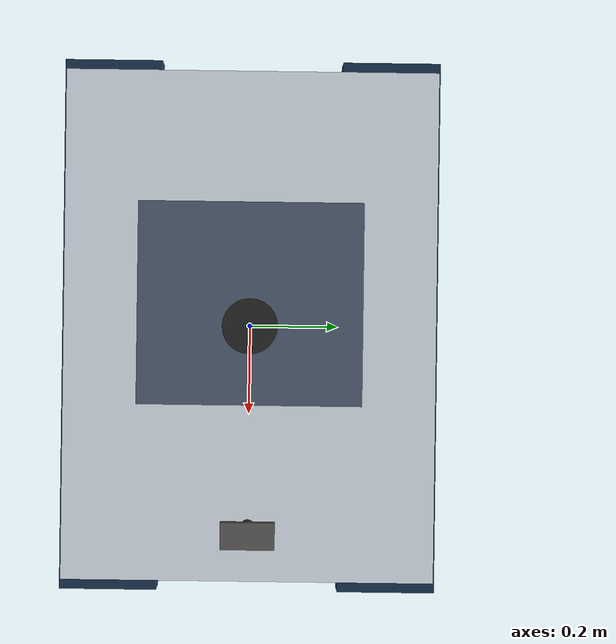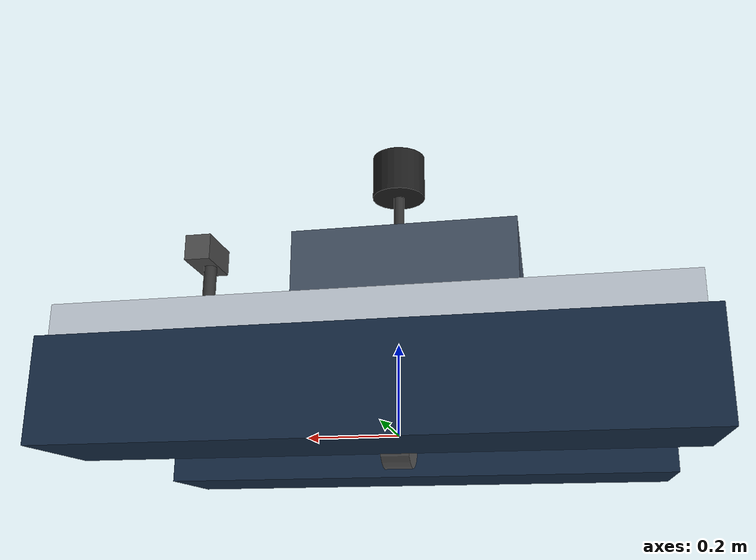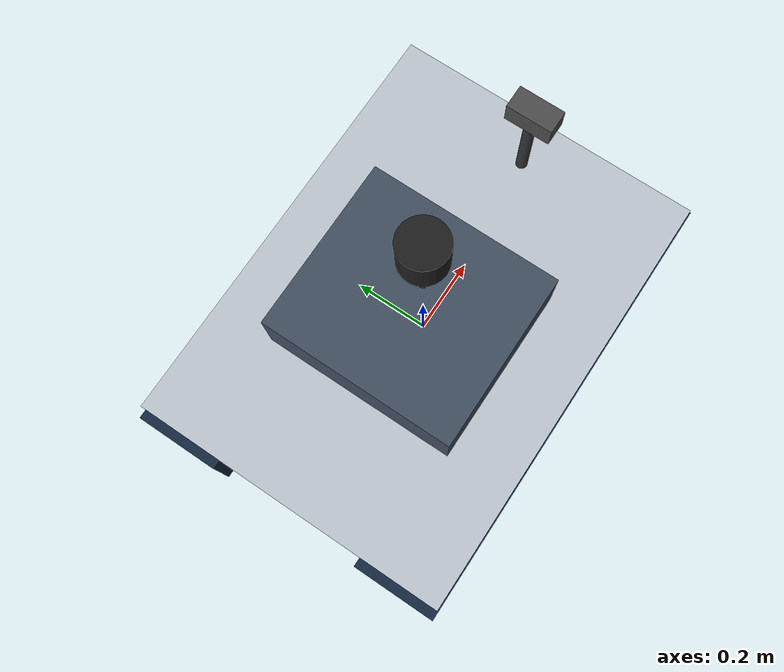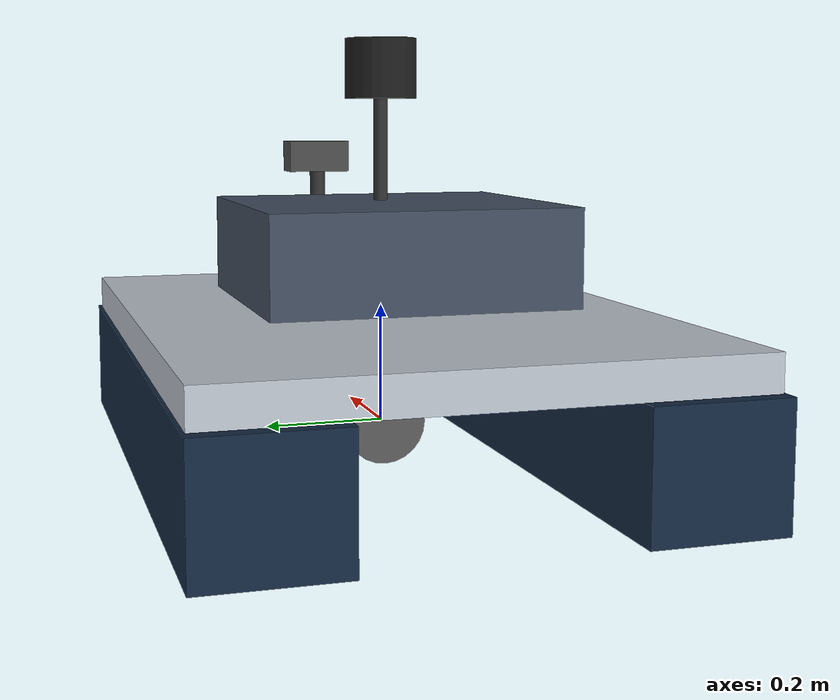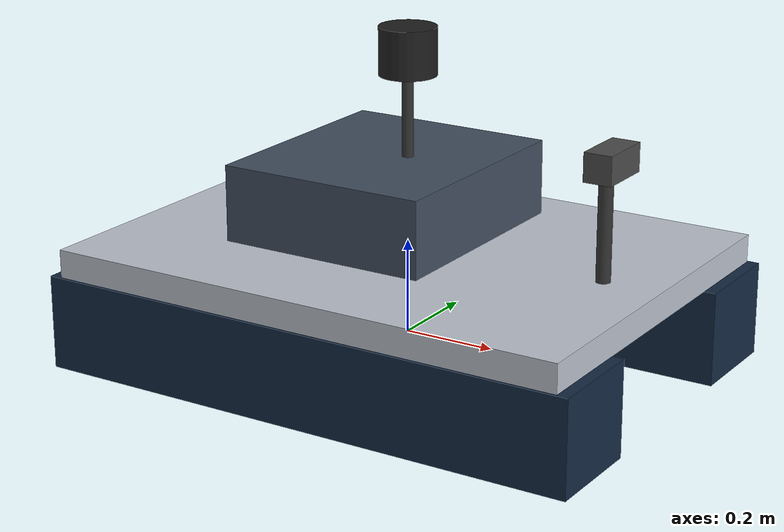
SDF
<?xml version="1.0" ?>
<sdf version="1.9">
  <model name="boat_real">
    <link name='wamv/base_link'>
      <inertial>
        <!-- COM slightly below the waterline plane for roll/pitch stability -->
        <pose>0 0 -0.04 0 0 0</pose>
        <mass>15</mass>
        <inertia>
          <ixx>1.10</ixx>
          <ixy>0</ixy>
          <ixz>0</ixz>
          <iyy>2.00</iyy>
          <iyz>0</iyz>
          <izz>2.70</izz>
        </inertia>
      </inertial>

      <!-- ==================== collisions ==================== -->
      <!-- Left demi-hull: box spans x[-0.6,0.6], y[-0.425,-0.205], z[-0.065,0.135] -->
      <collision name="left_hull_collision">
        <pose>0 -0.315 0.035 0 0 0</pose>
        <geometry>
          <box>
            <size>1.2 0.22 0.20</size>
          </box>
        </geometry>
        <surface>
          <friction>
            <ode>
              <mu>0.1</mu>
              <mu2>0.1</mu2>
            </ode>
          </friction>
        </surface>
      </collision>
      <!-- Right demi-hull -->
      <collision name="right_hull_collision">
        <pose>0 0.315 0.035 0 0 0</pose>
        <geometry>
          <box>
            <size>1.2 0.22 0.20</size>
          </box>
        </geometry>
        <surface>
          <friction>
            <ode>
              <mu>0.1</mu>
              <mu2>0.1</mu2>
            </ode>
          </friction>
        </surface>
      </collision>

      <!-- ==================== visuals ==================== -->
      <visual name="left_hull_visual">
        <pose>0 -0.315 0.035 0 0 0</pose>
        <geometry>
          <box>
            <size>1.2 0.22 0.20</size>
          </box>
        </geometry>
        <material>
          <ambient>0.05 0.10 0.16 1</ambient>
          <diffuse>0.08 0.16 0.26 1</diffuse>
          <specular>0.2 0.2 0.2 1</specular>
        </material>
      </visual>
      <visual name="right_hull_visual">
        <pose>0 0.315 0.035 0 0 0</pose>
        <geometry>
          <box>
            <size>1.2 0.22 0.20</size>
          </box>
        </geometry>
        <material>
          <ambient>0.05 0.10 0.16 1</ambient>
          <diffuse>0.08 0.16 0.26 1</diffuse>
          <specular>0.2 0.2 0.2 1</specular>
        </material>
      </visual>

      <!-- Deck (visual only): spans both hulls, z[0.135,0.195] -->
      <visual name="deck_visual">
        <pose>0 0 0.165 0 0 0</pose>
        <geometry>
          <box>
            <size>1.15 0.84 0.06</size>
          </box>
        </geometry>
        <material>
          <ambient>0.55 0.58 0.62 1</ambient>
          <diffuse>0.75 0.78 0.82 1</diffuse>
          <specular>0.1 0.1 0.1 1</specular>
        </material>
      </visual>

      <!-- Small cabin / electronics box (visual only) -->
      <visual name="cabin_visual">
        <pose>-0.05 0 0.30 0 0 0</pose>
        <geometry>
          <box>
            <size>0.45 0.50 0.16</size>
          </box>
        </geometry>
        <material>
          <ambient>0.18 0.22 0.28 1</ambient>
          <diffuse>0.26 0.31 0.38 1</diffuse>
          <specular>0.1 0.1 0.1 1</specular>
        </material>
      </visual>

      <!-- ==================== sensors ==================== -->
      <sensor name="imu_sensor" type="imu">
        <always_on>true</always_on>
        <update_rate>50</update_rate>
        <imu>
          <angular_velocity>
            <x><noise type="gaussian"><mean>0</mean><stddev>0.0002</stddev></noise></x>
            <y><noise type="gaussian"><mean>0</mean><stddev>0.0002</stddev></noise></y>
            <z><noise type="gaussian"><mean>0</mean><stddev>0.0002</stddev></noise></z>
          </angular_velocity>
          <linear_acceleration>
            <x><noise type="gaussian"><mean>0</mean><stddev>0.017</stddev></noise></x>
            <y><noise type="gaussian"><mean>0</mean><stddev>0.017</stddev></noise></y>
            <z><noise type="gaussian"><mean>0</mean><stddev>0.017</stddev></noise></z>
          </linear_acceleration>
        </imu>
      </sensor>

      <!-- Front RGB camera (perception test rig; same sensor params as
           the old WAM-V cameras: 1280x720 R8G8B8, HFOV ~80 deg, pitched
           slightly downward so the water/beacons stay in view). -->
      <sensor name='front_camera_sensor' type='camera'>
        <always_on>true</always_on>
        <update_rate>30</update_rate>
        <camera name='front_camera'>
          <horizontal_fov>1.3962634</horizontal_fov>
          <image>
            <width>1280</width>
            <height>720</height>
            <format>R8G8B8</format>
          </image>
          <clip>
            <near>0.05</near>
            <far>400</far>
          </clip>
          <noise>
            <type>gaussian</type>
            <mean>0</mean>
            <stddev>0.007</stddev>
          </noise>
        </camera>
        <pose>0.50 0 0.44 0 0.2618 0</pose>
      </sensor>
      <!-- camera mast + housing (visual only) -->
      <visual name="cam_mast_visual">
        <pose>0.45 0 0.30 0 0 0</pose>
        <geometry>
          <cylinder>
            <radius>0.015</radius>
            <length>0.30</length>
          </cylinder>
        </geometry>
        <material>
          <ambient>0.1 0.1 0.1 1</ambient>
          <diffuse>0.2 0.2 0.2 1</diffuse>
        </material>
      </visual>
      <visual name="cam_housing_visual">
        <pose>0.46 0 0.44 0 0 0</pose>
        <geometry>
          <box>
            <size>0.06 0.12 0.06</size>
          </box>
        </geometry>
        <material>
          <ambient>0.15 0.15 0.15 1</ambient>
          <diffuse>0.3 0.3 0.3 1</diffuse>
        </material>
      </visual>

      <sensor name='lidar_sensor' type='gpu_ray'>
        <always_on>true</always_on>
        <visualize>true</visualize>
        <update_rate>10</update_rate>
        <ray>
          <scan>
            <horizontal>
              <samples>1875</samples>
              <resolution>1</resolution>
              <min_angle>-3.1415926535897931</min_angle>
              <max_angle>3.1415926535897931</max_angle>
            </horizontal>
            <vertical>
              <samples>16</samples>
              <resolution>1</resolution>
              <min_angle>-0.26179938779914941</min_angle>
              <max_angle>0.26179938779914941</max_angle>
            </vertical>
          </scan>
          <range>
            <min>0.1</min>
            <max>130</max>
          </range>
          <noise>
            <type>gaussian</type>
            <mean>0</mean>
            <stddev>0.01</stddev>
          </noise>
        </ray>
        <pose>0 0 0.60 0 0 0</pose>
      </sensor>
      <visual name="lidar_mast_visual">
        <pose>0 0 0.48 0 0 0</pose>
        <geometry>
          <cylinder>
            <radius>0.012</radius>
            <length>0.26</length>
          </cylinder>
        </geometry>
        <material>
          <ambient>0.1 0.1 0.1 1</ambient>
          <diffuse>0.2 0.2 0.2 1</diffuse>
        </material>
      </visual>
      <visual name="lidar_housing_visual">
        <pose>0 0 0.60 0 0 0</pose>
        <geometry>
          <cylinder>
            <radius>0.06</radius>
            <length>0.10</length>
          </cylinder>
        </geometry>
        <material>
          <ambient>0.05 0.05 0.05 1</ambient>
          <diffuse>0.12 0.12 0.12 1</diffuse>
        </material>
      </visual>
    </link>

    <joint name='wamv/left_propeller_joint' type='revolute'>
      <pose relative_to='wamv/base_link'>-0.56 -0.315 -0.02 0 0 0</pose>
      <parent>wamv/base_link</parent>
      <child>wamv/left_propeller_link</child>
      <axis>
        <xyz>1 0 0</xyz>
        <limit>
          <lower>-inf</lower>
          <upper>inf</upper>
          <effort>10</effort>
          <velocity>100</velocity>
        </limit>
        <dynamics>
          <damping>0.05</damping>
          <friction>0.05</friction>
          <spring_reference>0</spring_reference>
          <spring_stiffness>0</spring_stiffness>
        </dynamics>
      </axis>
    </joint>
    <link name='wamv/left_propeller_link'>
      <inertial>
        <pose>0 0 0 0 0 0</pose>
        <mass>0.2</mass>
        <inertia>
          <ixx>0.0004</ixx>
          <ixy>0</ixy>
          <ixz>0</ixz>
          <iyy>0.0004</iyy>
          <iyz>0</iyz>
          <izz>0.0004</izz>
        </inertia>
      </inertial>
      <collision name="left_prop_collision">
        <pose>0 0 0 0 1.5707963267948966 0</pose>
        <geometry>
          <cylinder>
            <length>0.06</length>
            <radius>0.07</radius>
          </cylinder>
        </geometry>
      </collision>
      <visual name="left_prop_visual">
        <pose>0 0 0 0 1.5707963267948966 0</pose>
        <geometry>
          <cylinder>
            <length>0.06</length>
            <radius>0.07</radius>
          </cylinder>
        </geometry>
        <material>
          <ambient>0.25 0.25 0.25 1</ambient>
          <diffuse>0.35 0.35 0.35 1</diffuse>
        </material>
      </visual>
    </link>

    <!-- ============================================================
         Right thruster (mirrored)
         ============================================================ -->
    <joint name='wamv/right_propeller_joint' type='revolute'>
      <pose relative_to='wamv/base_link'>-0.56 0.315 -0.02 0 0 0</pose>
      <parent>wamv/base_link</parent>
      <child>wamv/right_propeller_link</child>
      <axis>
        <xyz>1 0 0</xyz>
        <limit>
          <lower>-inf</lower>
          <upper>inf</upper>
          <effort>10</effort>
          <velocity>100</velocity>
        </limit>
        <dynamics>
          <damping>0.05</damping>
          <friction>0.05</friction>
          <spring_reference>0</spring_reference>
          <spring_stiffness>0</spring_stiffness>
        </dynamics>
      </axis>
    </joint>
    <link name='wamv/right_propeller_link'>
      <inertial>
        <pose>0 0 0 0 0 0</pose>
        <mass>0.2</mass>
        <inertia>
          <ixx>0.0004</ixx>
          <ixy>0</ixy>
          <ixz>0</ixz>
          <iyy>0.0004</iyy>
          <iyz>0</iyz>
          <izz>0.0004</izz>
        </inertia>
      </inertial>
      <collision name="right_prop_collision">
        <pose>0 0 0 0 1.5707963267948966 0</pose>
        <geometry>
          <cylinder>
            <length>0.06</length>
            <radius>0.07</radius>
          </cylinder>
        </geometry>
      </collision>
      <visual name="right_prop_visual">
        <pose>0 0 0 0 1.5707963267948966 0</pose>
        <geometry>
          <cylinder>
            <length>0.06</length>
            <radius>0.07</radius>
          </cylinder>
        </geometry>
        <material>
          <ambient>0.25 0.25 0.25 1</ambient>
          <diffuse>0.35 0.35 0.35 1</diffuse>
        </material>
      </visual>
    </link>

    <plugin name='vrx::Surface' filename='libSurface.so'>
      <link_name>wamv/base_link</link_name>
      <hull_length>1.15</hull_length>
      <hull_radius>0.12</hull_radius>
      <fluid_level>0.1</fluid_level>
      <points>
        <point>0.7 -0.315 0.03</point>
        <point>-0.5 -0.315 0.03</point>
      </points>
      <wavefield>
        <topic>/vrx/wavefield/parameters</topic>
      </wavefield>
    </plugin>
    <plugin name='vrx::Surface' filename='libSurface.so'>
      <link_name>wamv/base_link</link_name>
      <hull_length>1.15</hull_length>
      <hull_radius>0.12</hull_radius>
      <fluid_level>0.1</fluid_level>
      <points>
        <point>0.7 0.315 0.03</point>
        <point>-0.5 0.315 0.03</point>
      </points>
      <wavefield>
        <topic>/vrx/wavefield/parameters</topic>
      </wavefield>
    </plugin>
    <plugin name='vrx::SimpleHydrodynamics' filename='libSimpleHydrodynamics.so'>
      <link_name>wamv/base_link</link_name>
      <xDotU>0.0</xDotU>
      <yDotV>0.0</yDotV>
      <nDotR>0.0</nDotR>
      <xU>5.0</xU>
      <xUU>8.0</xUU>
      <yV>5.0</yV>
      <yVV>5.0</yVV>
      <zW>30.0</zW>
      <kP>20.0</kP>
      <kPP>30.0</kPP>
      <mQ>40.0</mQ>
      <mQQ>40.0</mQQ>
      <nR>10.0</nR>
      <nRR>12.0</nRR>
    </plugin>
    <plugin name='gz::sim::systems::Thruster' filename='gz-sim-thruster-system'>
      <joint_name>wamv/left_propeller_joint</joint_name>
      <thrust_coefficient>0.004</thrust_coefficient>
      <fluid_density>1000</fluid_density>
      <propeller_diameter>0.12</propeller_diameter>
      <velocity_control>true</velocity_control>
      <max_thrust_cmd>120.0</max_thrust_cmd>
      <namespace>wamv</namespace>
      <topic>thrusters/left/thrust</topic>
      <name>left</name>
    </plugin>
    <plugin name='gz::sim::systems::Thruster' filename='gz-sim-thruster-system'>
      <joint_name>wamv/right_propeller_joint</joint_name>
      <thrust_coefficient>0.004</thrust_coefficient>
      <fluid_density>1000</fluid_density>
      <propeller_diameter>0.12</propeller_diameter>
      <velocity_control>true</velocity_control>
      <max_thrust_cmd>120.0</max_thrust_cmd>
      <namespace>wamv</namespace>
      <topic>thrusters/right/thrust</topic>
      <name>right</name>
    </plugin>
  </model>
</sdf>
